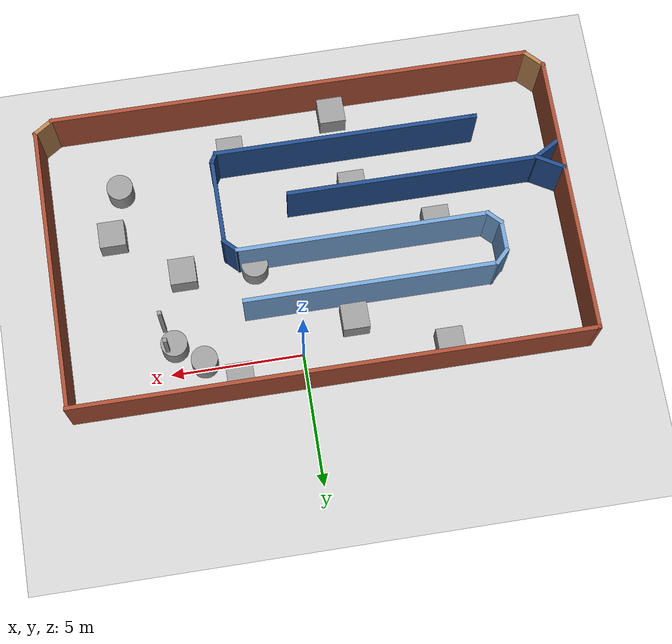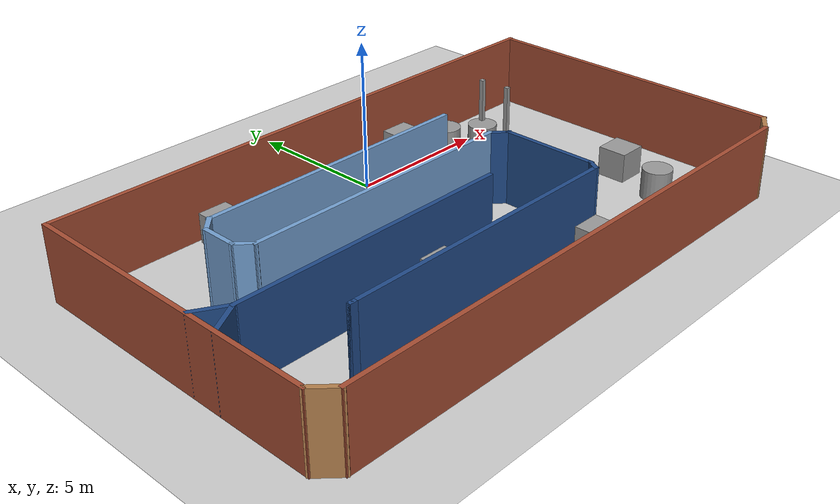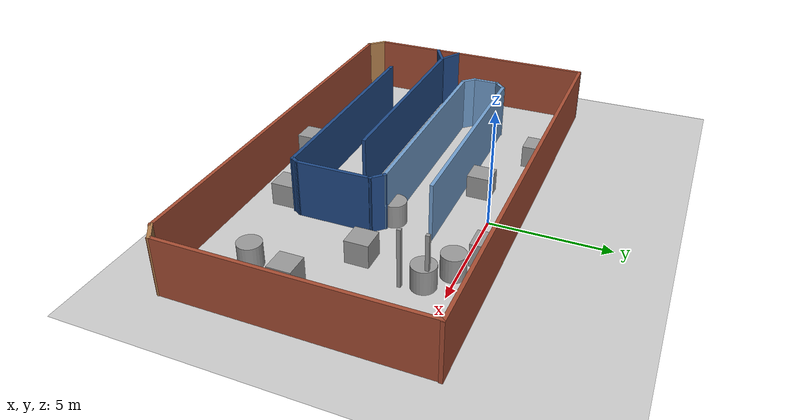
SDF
<sdf version="1.6">
 <world name="default">
  <light name="sun" type="directional">
   <pose>0 0 10 0 -0 0</pose>
   <diffuse>0.8 0.8 0.8 1</diffuse>
   <specular>0.2 0.2 0.2 1</specular>
   <attenuation>
    <range>1000</range>
    <constant>0.9</constant>
    <linear>0.01</linear>
    <quadratic>0.001</quadratic>
   </attenuation>
   <direction>-0.5 0.1 -0.9</direction>
  </light>
  <model name="ground_plane">
   <static>1</static>
   <link name="link">
    <collision name="collision">
     <geometry><plane><normal>0 0 1</normal><size>100 100</size></plane></geometry>
     <surface><friction><ode><mu>100</mu><mu2>50</mu2></ode></friction></surface>
    </collision>
    <visual name="visual">
     <cast_shadows>0</cast_shadows>
     <geometry><plane><normal>0 0 1</normal><size>100 100</size></plane></geometry>
     <material>
      <script><uri>file://media/materials/scripts/gazebo.material</uri><name>Gazebo/Grey</name></script>
     </material>
    </visual>
   </link>
  </model>
  <gravity>0 0 -9.8</gravity>
  <magnetic_field>6e-06 2.3e-05 -4.2e-05</magnetic_field>
  <atmosphere type="adiabatic"/>
  <physics name="default_physics" default="0" type="ode">
   <max_step_size>0.001</max_step_size>
   <real_time_factor>1</real_time_factor>
   <real_time_update_rate>1000</real_time_update_rate>
  </physics>
  <scene><ambient>0.4 0.4 0.4 1</ambient><background>0.7 0.7 0.7 1</background><shadows>1</shadows></scene>
  <audio><device>default</device></audio>
  <spherical_coordinates>
   <surface_model>EARTH_WGS84</surface_model>
   <latitude_deg>0</latitude_deg>
   <longitude_deg>0</longitude_deg>
   <elevation>0</elevation>
   <heading_deg>0</heading_deg>
  </spherical_coordinates>
  <model name="cooneo_room">
   <pose>-0.964853 -4.31353 0 0 -0 0</pose>
   <link name="Wall_1">
    <collision name="Wall_1_Collision">
     <geometry><box><size>19.5061 0.15 2.5</size></box></geometry>
     <pose>0 0 1.25 0 -0 0</pose>
    </collision>
    <visual name="Wall_1_Visual">
     <pose>0 0 1.25 0 -0 0</pose>
     <geometry><box><size>19.5061 0.15 2.5</size></box></geometry>
     <material>
      <script><uri>file://media/materials/scripts/gazebo.material</uri><name>Gazebo/Bricks</name></script>
      <ambient>1 1 1 1</ambient>
     </material>
     <meta><layer>0</layer></meta>
    </visual>
    <pose>0.033023 5.53598 0 0 -0 0</pose>
   </link>
   <link name="Wall_19">
    <collision name="Wall_19_Collision">
     <geometry><box><size>9.5 0.15 2.5</size></box></geometry>
     <pose>0 0 1.25 0 -0 0</pose>
    </collision>
    <visual name="Wall_19_Visual">
     <pose>0 0 1.25 0 -0 0</pose>
     <geometry><box><size>9.5 0.15 2.5</size></box></geometry>
     <material>
      <script><uri>file://media/materials/scripts/gazebo.material</uri><name>Gazebo/Grey</name></script>
      <ambient>0.447059 0.623529 0.811765 1</ambient>
     </material>
     <meta><layer>0</layer></meta>
    </visual>
    <pose>-1.82248 2.57741 0 0 -0 3.14159</pose>
   </link>
   <link name="Wall_2">
    <collision name="Wall_2_Collision">
     <geometry><box><size>10.7589 0.15 2.5</size></box></geometry>
     <pose>0 0 1.25 0 -0 0</pose>
    </collision>
    <visual name="Wall_2_Visual">
     <pose>0 0 1.25 0 -0 0</pose>
     <geometry><box><size>10.7589 0.15 2.5</size></box></geometry>
     <material>
      <script><uri>file://media/materials/scripts/gazebo.material</uri><name>Gazebo/Bricks</name></script>
      <ambient>1 1 1 1</ambient>
     </material>
     <meta><layer>0</layer></meta>
    </visual>
    <pose>9.67608 0.231509 0 0 -0 -1.5708</pose>
   </link>
   <link name="Wall_20">
    <collision name="Wall_20_Collision">
     <geometry><box><size>0.75 0.15 2.5</size></box></geometry>
     <pose>0 0 1.25 0 -0 0</pose>
    </collision>
    <visual name="Wall_20_Visual">
     <pose>0 0 1.25 0 -0 0</pose>
     <geometry><box><size>0.75 0.15 2.5</size></box></geometry>
     <material>
      <script><uri>file://media/materials/scripts/gazebo.material</uri><name>Gazebo/Grey</name></script>
      <ambient>0.447059 0.623529 0.811765 1</ambient>
     </material>
     <meta><layer>0</layer></meta>
    </visual>
    <pose>-6.70961 2.36528 0 0 -0 -2.35619</pose>
   </link>
   <link name="Wall_21">
    <collision name="Wall_21_Collision">
     <geometry><box><size>1.25 0.15 2.5</size></box></geometry>
     <pose>0 0 1.25 0 -0 0</pose>
    </collision>
    <visual name="Wall_21_Visual">
     <pose>0 0 1.25 0 -0 0</pose>
     <geometry><box><size>1.25 0.15 2.5</size></box></geometry>
     <material>
      <script><uri>file://media/materials/scripts/gazebo.material</uri><name>Gazebo/Grey</name></script>
      <ambient>0.447059 0.623529 0.811765 1</ambient>
     </material>
     <meta><layer>0</layer></meta>
    </visual>
    <pose>-6.92174 1.60315 0 0 -0 -1.5708</pose>
   </link>
   <link name="Wall_22">
    <collision name="Wall_22_Collision">
     <geometry><box><size>0.75 0.15 2.5</size></box></geometry>
     <pose>0 0 1.25 0 -0 0</pose>
    </collision>
    <visual name="Wall_22_Visual">
     <pose>0 0 1.25 0 -0 0</pose>
     <geometry><box><size>0.75 0.15 2.5</size></box></geometry>
     <material>
      <script><uri>file://media/materials/scripts/gazebo.material</uri><name>Gazebo/Grey</name></script>
      <ambient>0.447059 0.623529 0.811765 1</ambient>
     </material>
     <meta><layer>0</layer></meta>
    </visual>
    <pose>-6.70961 0.841018 0 0 -0 -0.785398</pose>
   </link>
   <link name="Wall_23">
    <collision name="Wall_23_Collision">
     <geometry><box><size>9.5 0.15 2.5</size></box></geometry>
     <pose>0 0 1.25 0 -0 0</pose>
    </collision>
    <visual name="Wall_23_Visual">
     <pose>0 0 1.25 0 -0 0</pose>
     <geometry><box><size>9.5 0.15 2.5</size></box></geometry>
     <material>
      <script><uri>file://media/materials/scripts/gazebo.material</uri><name>Gazebo/Grey</name></script>
      <ambient>0.447059 0.623529 0.811765 1</ambient>
     </material>
     <meta><layer>0</layer></meta>
    </visual>
    <pose>-1.82248 0.628886 0 0 -0 0</pose>
   </link>
   <link name="Wall_24">
    <collision name="Wall_24_Collision">
     <geometry><box><size>0.75 0.15 2.5</size></box></geometry>
     <pose>0 0 1.25 0 -0 0</pose>
    </collision>
    <visual name="Wall_24_Visual">
     <pose>0 0 1.25 0 -0 0</pose>
     <geometry><box><size>0.75 0.15 2.5</size></box></geometry>
     <material>
      <script><uri>file://media/materials/scripts/gazebo.material</uri><name>Gazebo/Grey</name></script>
      <ambient>0.12549 0.290196 0.529412 1</ambient>
     </material>
     <meta><layer>0</layer></meta>
    </visual>
    <pose>3.06465 0.416754 0 0 -0 -0.785398</pose>
   </link>
   <link name="Wall_25">
    <collision name="Wall_25_Collision">
     <geometry><box><size>3.29859 0.15 2.5</size></box></geometry>
     <pose>0 0 1.25 0 -0 0</pose>
    </collision>
    <visual name="Wall_25_Visual">
     <pose>0 0 1.25 0 -0 0</pose>
     <geometry><box><size>3.29859 0.15 2.5</size></box></geometry>
     <material>
      <script><uri>file://media/materials/scripts/gazebo.material</uri><name>Gazebo/Grey</name></script>
      <ambient>0.12549 0.290196 0.529412 1</ambient>
     </material>
     <meta><layer>0</layer></meta>
    </visual>
    <pose>3.28172 -1.36946 0 0 -0 -1.56766</pose>
   </link>
   <link name="Wall_28">
    <collision name="Wall_28_Collision">
     <geometry><box><size>0.5 0.15 2.5</size></box></geometry>
     <pose>0 0 1.25 0 -0 0</pose>
    </collision>
    <visual name="Wall_28_Visual">
     <pose>0 0 1.25 0 -0 0</pose>
     <geometry><box><size>0.5 0.15 2.5</size></box></geometry>
     <material>
      <script><uri>file://media/materials/scripts/gazebo.material</uri><name>Gazebo/Grey</name></script>
      <ambient>0.12549 0.290196 0.529412 1</ambient>
     </material>
     <meta><layer>0</layer></meta>
    </visual>
    <pose>3.19915 -3.0951 0 0 -0 -2.0944</pose>
   </link>
   <link name="Wall_29">
    <collision name="Wall_29_Collision">
     <geometry><box><size>10 0.15 2.5</size></box></geometry>
     <pose>0 0 1.25 0 -0 0</pose>
    </collision>
    <visual name="Wall_29_Visual">
     <pose>0 0 1.25 0 -0 0</pose>
     <geometry><box><size>10 0.15 2.5</size></box></geometry>
     <material>
      <script><uri>file://media/materials/scripts/gazebo.material</uri><name>Gazebo/Grey</name></script>
      <ambient>0.12549 0.290196 0.529412 1</ambient>
     </material>
     <meta><layer>0</layer></meta>
    </visual>
    <pose>-1.81335 -3.24666 0 0 -0 3.14159</pose>
   </link>
   <link name="Wall_30">
    <collision name="Wall_30_Collision">
     <geometry><box><size>0.25 0.15 2.5</size></box></geometry>
     <pose>0 0 1.25 0 -0 0</pose>
    </collision>
    <visual name="Wall_30_Visual">
     <pose>0 0 1.25 0 -0 0</pose>
     <geometry><box><size>0.25 0.15 2.5</size></box></geometry>
     <material>
      <script><uri>file://media/materials/scripts/gazebo.material</uri><name>Gazebo/Grey</name></script>
      <ambient>0.12549 0.290196 0.529412 1</ambient>
     </material>
     <meta><layer>0</layer></meta>
    </visual>
    <pose>-6.68835 -3.24666 0 0 -0 0</pose>
   </link>
   <link name="Wall_34">
    <collision name="Wall_34_Collision">
     <geometry><box><size>9.5 0.15 2.5</size></box></geometry>
     <pose>0 0 1.25 0 -0 0</pose>
    </collision>
    <visual name="Wall_34_Visual">
     <pose>0 0 1.25 0 -0 0</pose>
     <geometry><box><size>9.5 0.15 2.5</size></box></geometry>
     <material>
      <script><uri>file://media/materials/scripts/gazebo.material</uri><name>Gazebo/Grey</name></script>
      <ambient>0.12549 0.290196 0.529412 1</ambient>
     </material>
     <meta><layer>0</layer></meta>
    </visual>
    <pose>-4.02813 -1.2654 0 0 -0 3.14159</pose>
   </link>
   <link name="Wall_35">
    <collision name="Wall_35_Collision">
     <geometry><box><size>1.25 0.15 2.5</size></box></geometry>
     <pose>0 0 1.25 0 -0 0</pose>
    </collision>
    <visual name="Wall_35_Visual">
     <pose>0 0 1.25 0 -0 0</pose>
     <geometry><box><size>1.25 0.15 2.5</size></box></geometry>
     <material>
      <script><uri>file://media/materials/scripts/gazebo.material</uri><name>Gazebo/Grey</name></script>
      <ambient>0.12549 0.290196 0.529412 1</ambient>
     </material>
     <meta><layer>0</layer></meta>
    </visual>
    <pose>-9.17945 -0.990402 0 0 -0 2.61799</pose>
   </link>
   <link name="Wall_37">
    <collision name="Wall_37_Collision">
     <geometry><box><size>1.25 0.15 2.5</size></box></geometry>
     <pose>0 0 1.25 0 -0 0</pose>
    </collision>
    <visual name="Wall_37_Visual">
     <pose>0 0 1.25 0 -0 0</pose>
     <geometry><box><size>1.25 0.15 2.5</size></box></geometry>
     <material>
      <script><uri>file://media/materials/scripts/gazebo.material</uri><name>Gazebo/Grey</name></script>
      <ambient>0.12549 0.290196 0.529412 1</ambient>
     </material>
     <meta><layer>0</layer></meta>
    </visual>
    <pose>-9.17945 -1.5404 0 0 -0 -2.61799</pose>
   </link>
   <link name="Wall_39">
    <collision name="Wall_39_Collision">
     <geometry><box><size>1 0.15 2.5</size></box></geometry>
     <pose>0 0 1.25 0 -0 0</pose>
    </collision>
    <visual name="Wall_39_Visual">
     <pose>0 0 1.25 0 -0 0</pose>
     <geometry><box><size>1 0.15 2.5</size></box></geometry>
     <material>
      <script><uri>file://media/materials/scripts/gazebo.material</uri><name>Gazebo/Wood</name></script>
      <ambient>1 1 1 1</ambient>
     </material>
     <meta><layer>0</layer></meta>
    </visual>
    <pose>-9.37948 -5.2044 0 0 -0 -0.785398</pose>
   </link>
   <link name="Wall_4">
    <collision name="Wall_4_Collision">
     <geometry><box><size>10.5899 0.15 2.5</size></box></geometry>
     <pose>0 0 1.25 0 -0 0</pose>
    </collision>
    <visual name="Wall_4_Visual">
     <pose>0 0 1.25 0 -0 0</pose>
     <geometry><box><size>10.5899 0.15 2.5</size></box></geometry>
     <material>
      <script><uri>file://media/materials/scripts/gazebo.material</uri><name>Gazebo/Bricks</name></script>
      <ambient>1 1 1 1</ambient>
     </material>
     <meta><layer>0</layer></meta>
    </visual>
    <pose>-9.68 0.316053 0 0 -0 -1.5708</pose>
   </link>
   <link name="Wall_43">
    <collision name="Wall_43_Collision">
     <geometry><box><size>18.25 0.15 2.5</size></box></geometry>
     <pose>0 0 1.25 0 -0 0</pose>
    </collision>
    <visual name="Wall_43_Visual">
     <pose>0 0 1.25 0 -0 0</pose>
     <geometry><box><size>18.25 0.15 2.5</size></box></geometry>
     <material>
      <script><uri>file://media/materials/scripts/gazebo.material</uri><name>Gazebo/Bricks</name></script>
      <ambient>1 1 1 1</ambient>
     </material>
     <meta><layer>0</layer></meta>
    </visual>
    <pose>-0.028957 -5.50492 0 0 -0 0</pose>
   </link>
   <link name="Wall_44">
    <collision name="Wall_44_Collision">
     <geometry><box><size>0.934641 0.15 2.5</size></box></geometry>
     <pose>0 0 1.25 0 -0 0</pose>
    </collision>
    <visual name="Wall_44_Visual">
     <pose>0 0 1.25 0 -0 0</pose>
     <geometry><box><size>0.934641 0.15 2.5</size></box></geometry>
     <material>
      <script><uri>file://media/materials/scripts/gazebo.material</uri><name>Gazebo/Wood</name></script>
      <ambient>1 1 1 1</ambient>
     </material>
     <meta><layer>0</layer></meta>
    </visual>
    <pose>9.34856 -5.28894 0 0 -0 0.582974</pose>
   </link>
   <link name="Wall_50">
    <collision name="Wall_50_Collision">
     <geometry><box><size>0.15 0.15 2.5</size></box></geometry>
     <pose>0 0 1.25 0 -0 0</pose>
    </collision>
    <visual name="Wall_50_Visual">
     <pose>0 0 1.25 0 -0 0</pose>
     <geometry><box><size>0.15 0.15 2.5</size></box></geometry>
     <material>
      <script><uri>file://media/materials/scripts/gazebo.material</uri><name>Gazebo/Grey</name></script>
      <ambient>1 1 1 1</ambient>
     </material>
     <meta><layer>0</layer></meta>
    </visual>
    <pose>5.90662 3.59611 0 0 -0 0</pose>
   </link>
   <link name="Wall_67">
    <collision name="Wall_67_Collision">
     <geometry><box><size>0.15 0.15 2.5</size></box></geometry>
     <pose>0 0 1.25 0 -0 0</pose>
    </collision>
    <visual name="Wall_67_Visual">
     <pose>0 0 1.25 0 -0 0</pose>
     <geometry><box><size>0.15 0.15 2.5</size></box></geometry>
     <material>
      <script><uri>file://media/materials/scripts/gazebo.material</uri><name>Gazebo/Grey</name></script>
      <ambient>1 1 1 1</ambient>
     </material>
     <meta><layer>0</layer></meta>
    </visual>
    <pose>5.97222 2.55329 0 0 -0 0</pose>
   </link>
   <link name="Wall_68">
    <collision name="Wall_68_Collision">
     <geometry><box><size>0.15 0.15 2.5</size></box></geometry>
     <pose>0 0 1.25 0 -0 0</pose>
    </collision>
    <visual name="Wall_68_Visual">
     <pose>0 0 1.25 0 -0 0</pose>
     <geometry><box><size>0.15 0.15 2.5</size></box></geometry>
     <material>
      <script><uri>file://media/materials/scripts/gazebo.material</uri><name>Gazebo/Grey</name></script>
      <ambient>1 1 1 1</ambient>
     </material>
     <meta><layer>0</layer></meta>
    </visual>
    <pose>5.97222 2.55329 0 0 -0 0</pose>
   </link>
   <static>1</static>
  </model>
  <model name="unit_box">
   <pose>6.46906 -5.53913 0.499995 1e-05 -0 0</pose>
   <link name="link">
    <inertial>
     <mass>1</mass>
     <inertia>
      <ixx>0.166667</ixx>
      <ixy>0</ixy>
      <ixz>0</ixz>
      <iyy>0.166667</iyy>
      <iyz>0</iyz>
      <izz>0.166667</izz>
     </inertia>
    </inertial>
    <collision name="collision"><geometry><box><size>1 1 1</size></box></geometry></collision>
    <visual name="visual">
     <geometry><box><size>1 1 1</size></box></geometry>
     <material>
      <script><name>Gazebo/Grey</name><uri>file://media/materials/scripts/gazebo.material</uri></script>
     </material>
    </visual>
   </link>
  </model>
  <model name="unit_cylinder">
   <pose>1.31008 -3.5183 0.499998 3e-06 -2e-06 0.001172</pose>
   <link name="link">
    <inertial>
     <mass>1</mass>
     <inertia><ixx>0.145833</ixx><ixy>0</ixy><ixz>0</ixz><iyy>0.145833</iyy><iyz>0</iyz><izz>0.125</izz></inertia>
    </inertial>
    <collision name="collision">
     <geometry><cylinder><radius>0.5</radius><length>1</length></cylinder></geometry>
    </collision>
    <visual name="visual">
     <geometry><cylinder><radius>0.5</radius><length>1</length></cylinder></geometry>
     <material>
      <script><name>Gazebo/Grey</name><uri>file://media/materials/scripts/gazebo.material</uri></script>
     </material>
    </visual>
   </link>
  </model>
  <model name="unit_cylinder_0">
   <pose>4.69367 -0.950871 0.499992 -1e-06 4e-06 0.653195</pose>
   <link name="link">
    <inertial>
     <mass>1</mass>
     <inertia><ixx>0.145833</ixx><ixy>0</ixy><ixz>0</ixz><iyy>0.145833</iyy><iyz>0</iyz><izz>0.125</izz></inertia>
    </inertial>
    <collision name="collision">
     <geometry><cylinder><radius>0.5</radius><length>1</length></cylinder></geometry>
    </collision>
    <visual name="visual">
     <geometry><cylinder><radius>0.5</radius><length>1</length></cylinder></geometry>
     <material>
      <script><name>Gazebo/Grey</name><uri>file://media/materials/scripts/gazebo.material</uri></script>
     </material>
    </visual>
   </link>
  </model>
  <model name="unit_box_0">
   <pose>-2.08881 -0.963259 0.499995 0 1e-05 0</pose>
   <link name="link">
    <inertial>
     <mass>1</mass>
     <inertia>
      <ixx>0.166667</ixx>
      <ixy>0</ixy>
      <ixz>0</ixz>
      <iyy>0.166667</iyy>
      <iyz>0</iyz>
      <izz>0.166667</izz>
     </inertia>
    </inertial>
    <collision name="collision"><geometry><box><size>1 1 1</size></box></geometry></collision>
    <visual name="visual">
     <geometry><box><size>1 1 1</size></box></geometry>
     <material>
      <script><name>Gazebo/Grey</name><uri>file://media/materials/scripts/gazebo.material</uri></script>
     </material>
    </visual>
   </link>
  </model>
  <model name="unit_box_1">
   <pose>-5.44534 0.518145 0.499995 1e-05 -0 0</pose>
   <link name="link">
    <inertial>
     <mass>1</mass>
     <inertia>
      <ixx>0.166667</ixx>
      <ixy>0</ixy>
      <ixz>0</ixz>
      <iyy>0.166667</iyy>
      <iyz>0</iyz>
      <izz>0.166667</izz>
     </inertia>
    </inertial>
    <collision name="collision"><geometry><box><size>1 1 1</size></box></geometry></collision>
    <visual name="visual">
     <geometry><box><size>1 1 1</size></box></geometry>
     <material>
      <script><name>Gazebo/Grey</name><uri>file://media/materials/scripts/gazebo.material</uri></script>
     </material>
    </visual>
   </link>
  </model>
  <model name="unit_box_2">
   <pose>-2.83209 -6.15395 0.499995 -0 1e-05 1e-06</pose>
   <link name="link">
    <inertial>
     <mass>1</mass>
     <inertia>
      <ixx>0.166667</ixx>
      <ixy>0</ixy>
      <ixz>0</ixz>
      <iyy>0.166667</iyy>
      <iyz>0</iyz>
      <izz>0.166667</izz>
     </inertia>
    </inertial>
    <collision name="collision"><geometry><box><size>1 1 1</size></box></geometry></collision>
    <visual name="visual">
     <geometry><box><size>1 1 1</size></box></geometry>
     <material>
      <script><name>Gazebo/Grey</name><uri>file://media/materials/scripts/gazebo.material</uri></script>
     </material>
    </visual>
   </link>
  </model>
  <model name="unit_box_3">
   <pose>-2.50324 -9.24346 0.5 0 -0 0</pose>
   <link name="link">
    <inertial>
     <mass>1</mass>
     <inertia>
      <ixx>0.166667</ixx>
      <ixy>0</ixy>
      <ixz>0</ixz>
      <iyy>0.166667</iyy>
      <iyz>0</iyz>
      <izz>0.166667</izz>
     </inertia>
    </inertial>
    <collision name="collision"><geometry><box><size>1 1 1</size></box></geometry></collision>
    <visual name="visual">
     <geometry><box><size>1 1 1</size></box></geometry>
     <material>
      <script><name>Gazebo/Grey</name><uri>file://media/materials/scripts/gazebo.material</uri></script>
     </material>
    </visual>
   </link>
  </model>
  <model name="unit_box_4">
   <pose>1.57088 -8.22757 0.499995 0 1e-05 0</pose>
   <link name="link">
    <inertial>
     <mass>1</mass>
     <inertia>
      <ixx>0.166667</ixx>
      <ixy>0</ixy>
      <ixz>0</ixz>
      <iyy>0.166667</iyy>
      <iyz>0</iyz>
      <izz>0.166667</izz>
     </inertia>
    </inertial>
    <collision name="collision"><geometry><box><size>1 1 1</size></box></geometry></collision>
    <visual name="visual">
     <geometry><box><size>1 1 1</size></box></geometry>
     <material>
      <script><name>Gazebo/Grey</name><uri>file://media/materials/scripts/gazebo.material</uri></script>
     </material>
    </visual>
   </link>
  </model>
  <model name="unit_box_5">
   <pose>4.02667 -3.69475 0.499995 1e-05 -0 0</pose>
   <link name="link">
    <inertial>
     <mass>1</mass>
     <inertia>
      <ixx>0.166667</ixx>
      <ixy>0</ixy>
      <ixz>0</ixz>
      <iyy>0.166667</iyy>
      <iyz>0</iyz>
      <izz>0.166667</izz>
     </inertia>
    </inertial>
    <collision name="collision"><geometry><box><size>1 1 1</size></box></geometry></collision>
    <visual name="visual">
     <geometry><box><size>1 1 1</size></box></geometry>
     <material>
      <script><name>Gazebo/Grey</name><uri>file://media/materials/scripts/gazebo.material</uri></script>
     </material>
    </visual>
   </link>
  </model>
  <model name="unit_box_6">
   <pose>2.43881 0.647448 0.5 0 -0 0</pose>
   <link name="link">
    <inertial>
     <mass>1</mass>
     <inertia>
      <ixx>0.166667</ixx>
      <ixy>0</ixy>
      <ixz>0</ixz>
      <iyy>0.166667</iyy>
      <iyz>0</iyz>
      <izz>0.166667</izz>
     </inertia>
    </inertial>
    <collision name="collision"><geometry><box><size>1 1 1</size></box></geometry></collision>
    <visual name="visual">
     <geometry><box><size>1 1 1</size></box></geometry>
     <material>
      <script><name>Gazebo/Grey</name><uri>file://media/materials/scripts/gazebo.material</uri></script>
     </material>
    </visual>
   </link>
  </model>
  <model name="unit_box_7">
   <pose>-5.76249 -4.25965 0.499995 -1e-05 -0 -2e-06</pose>
   <link name="link">
    <inertial>
     <mass>1</mass>
     <inertia>
      <ixx>0.166667</ixx>
      <ixy>0</ixy>
      <ixz>0</ixz>
      <iyy>0.166667</iyy>
      <iyz>0</iyz>
      <izz>0.166667</izz>
     </inertia>
    </inertial>
    <collision name="collision"><geometry><box><size>1 1 1</size></box></geometry></collision>
    <visual name="visual">
     <geometry><box><size>1 1 1</size></box></geometry>
     <material>
      <script><name>Gazebo/Grey</name><uri>file://media/materials/scripts/gazebo.material</uri></script>
     </material>
    </visual>
   </link>
  </model>
  <model name="unit_cylinder_1">
   <pose>3.66893 -0.186325 0.499993 -3e-06 -4e-06 -0</pose>
   <link name="link">
    <inertial>
     <mass>1</mass>
     <inertia><ixx>0.145833</ixx><ixy>0</ixy><ixz>0</ixz><iyy>0.145833</iyy><iyz>0</iyz><izz>0.125</izz></inertia>
    </inertial>
    <collision name="collision">
     <geometry><cylinder><radius>0.5</radius><length>1</length></cylinder></geometry>
    </collision>
    <visual name="visual">
     <geometry><cylinder><radius>0.5</radius><length>1</length></cylinder></geometry>
     <material>
      <script><name>Gazebo/Grey</name><uri>file://media/materials/scripts/gazebo.material</uri></script>
     </material>
    </visual>
   </link>
  </model>
  <model name="unit_cylinder_2">
   <pose>5.94462 -7.34795 0.499997 3e-06 4e-06 -0</pose>
   <link name="link">
    <inertial>
     <mass>1</mass>
     <inertia><ixx>0.145833</ixx><ixy>0</ixy><ixz>0</ixz><iyy>0.145833</iyy><iyz>0</iyz><izz>0.125</izz></inertia>
    </inertial>
    <collision name="collision">
     <geometry><cylinder><radius>0.5</radius><length>1</length></cylinder></geometry>
    </collision>
    <visual name="visual">
     <geometry><cylinder><radius>0.5</radius><length>1</length></cylinder></geometry>
     <material>
      <script><name>Gazebo/Grey</name><uri>file://media/materials/scripts/gazebo.material</uri></script>
     </material>
    </visual>
   </link>
  </model>
 </world>
</sdf>
